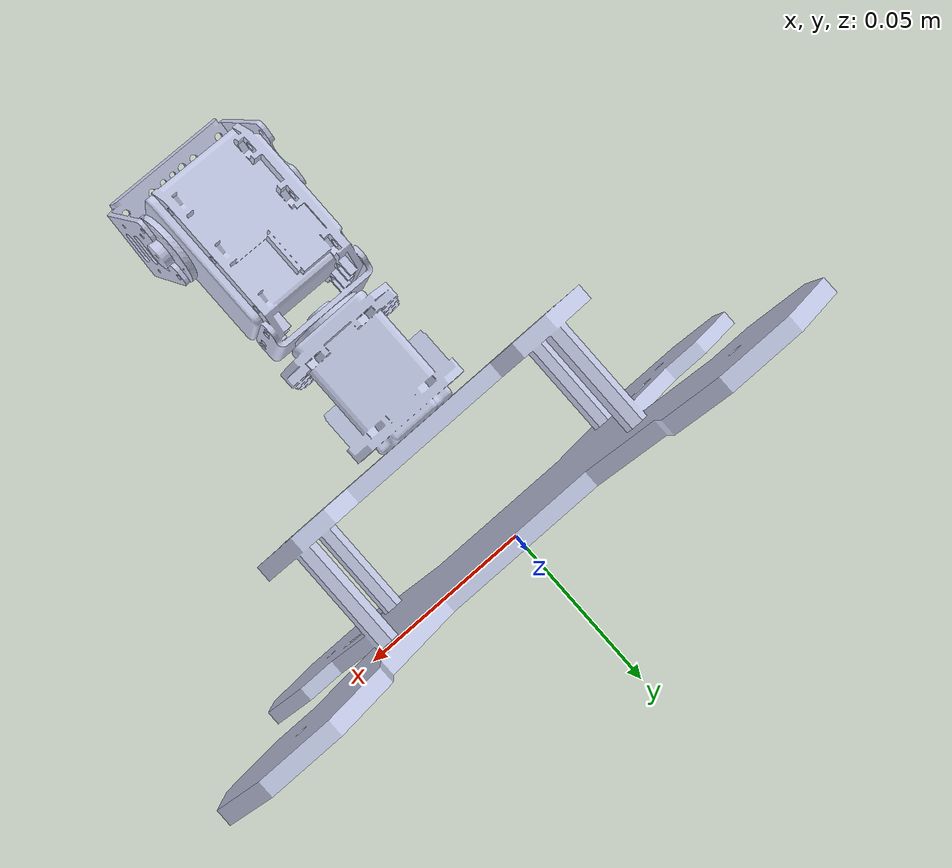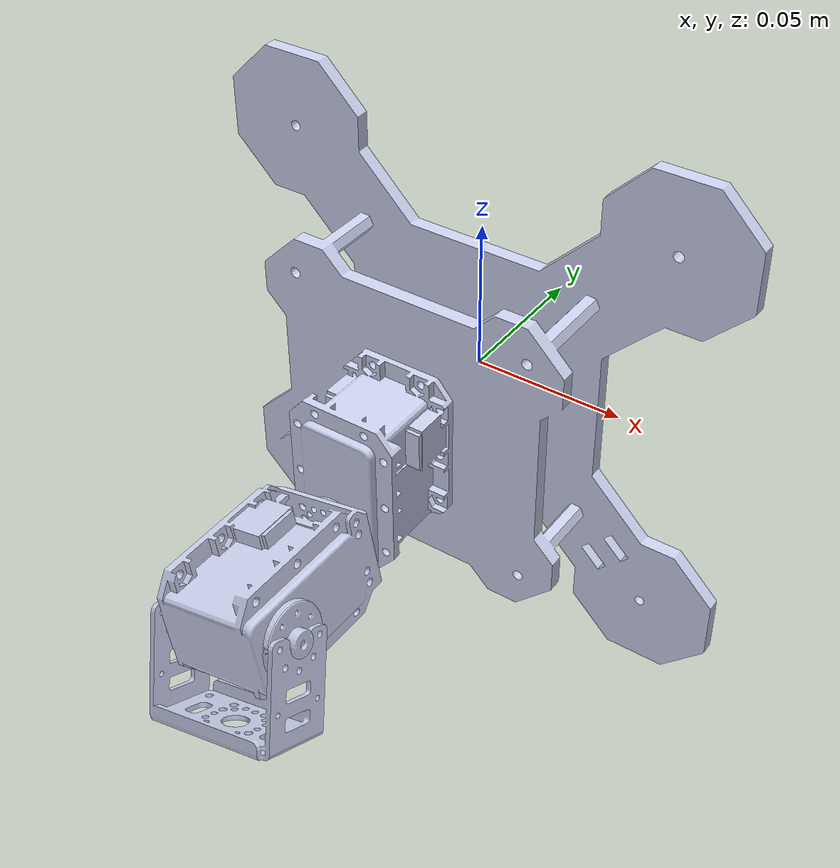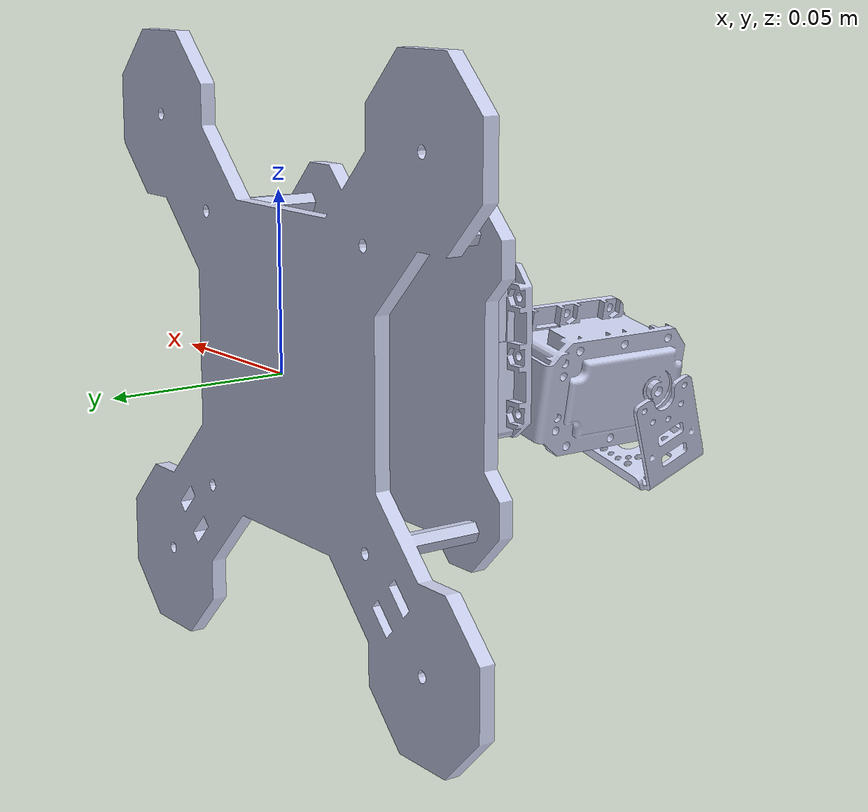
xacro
<?xml version="1.0" ?>
<robot  name="yuntai" xmlns:xacro="http://ros.org/wiki/xacro">
  <link name="plate_link">
    <inertial>
      <origin xyz="-2.24592311040574E-17 -0.0141762635511438 0.000273176447447133" rpy="0 0 0" />
      <mass value="0.120955688774525" />
      <inertia
        ixx="0.000258527715151011"
        ixy="-7.38767452535662E-20"
        ixz="4.48831763968397E-20"
        iyy="0.00045283491467706"
        iyz="-3.94070526460506E-07"
        izz="0.000258536741514214" />
    </inertial>
    <visual>
      <origin  xyz="0 0 0" rpy="0 0 0" />
      <geometry>
        <mesh filename="package://bulldog_description/meshes/plate_link.STL" />
      </geometry>
      <material
        name="">
        <color rgba="0.792156862745098 0.819607843137255 0.933333333333333 1" />
      </material>
    </visual>
    <collision>
      <origin xyz="0 0 0" rpy="0 0 0" />
      <geometry>
        <mesh filename="package://bulldog_description/meshes/plate_link.STL" />
      </geometry>
    </collision>
  </link>
  <link name="servo1_link">
    <inertial>
      <origin xyz="1.01055349547203E-06 -0.0115134503385961 -3.23566095202441E-05" rpy="0 0 0" />
      <mass value="0.0432653395302604" />
      <inertia
        ixx="1.21934605377184E-05"
        ixy="-7.09153810720321E-10"
        ixz="-5.39912755439103E-10"
        iyy="7.4884566382129E-06"
        iyz="-1.82417926778418E-07"
        izz="1.03328178785861E-05" />
    </inertial>
    <visual>
      <origin xyz="0 0 0" rpy="0 0 0" />
      <geometry>
        <mesh filename="package://bulldog_description/meshes/servo1_link.STL" />
      </geometry>
      <material
        name="">
        <color rgba="0.792156862745098 0.819607843137255 0.933333333333333 1" />
      </material>
    </visual>
    <collision>
      <origin
        xyz="0 0 0"
        rpy="0 0 0" />
      <geometry>
        <mesh filename="package://bulldog_description/meshes/servo1_link.STL" />
      </geometry>
    </collision>
  </link>
  <joint name="servo1_joint" type="fixed">
    <origin xyz="0 -0.05675 -0.0133" rpy="-1.5708 1.2246E-16 -3.1416" />
    <parent link="plate_link" />
    <child link="servo1_link" />
    <axis xyz="0 0 0" />
  </joint>
  <link name="disk1_link">
    <inertial>
      <origin xyz="4.05487193606184E-08 0.00225749355928646 -6.63464601990266E-08" rpy="0 0 0" />
      <mass value="0.000787028624060867" />
      <inertia
        ixx="2.31518284348894E-08"
        ixy="5.34094331205932E-14"
        ixz="1.07416097004525E-13"
        iyy="4.4522029534641E-08"
        iyz="1.33780673168824E-13"
        izz="2.31513791752799E-08" />
    </inertial>
    <visual>
      <origin xyz="0 0 0" rpy="0 0 0" />
      <geometry>
        <mesh filename="package://bulldog_description/meshes/disk1_link.STL" />
      </geometry>
      <material name="">
        <color rgba="0.792156862745098 0.819607843137255 0.933333333333333 1" />
      </material>
    </visual>
    <collision>
      <origin xyz="0 0 0" rpy="0 0 0" />
      <geometry>
        <mesh filename="package://bulldog_description/meshes/disk1_link.STL" />
      </geometry>
    </collision>
  </link>
  <joint name="yuntai_shoulder_elbow_joint" type="revolute">
    <origin xyz="0 0 0.017745" rpy="1.5708 -2.5995E-18 -1.1652" />
    <parent link="servo1_link" />
    <child link="disk1_link" />
    <axis xyz="0 1 0" />
    <limit lower="-1.57" upper="1.57"  effort="150"  velocity="3.15" />
  </joint>

  <link name="servo2_link">
    <inertial>
      <origin xyz="-1.62147985772049E-05 0.0293800171852581 3.12984866827497E-05" rpy="0 0 0" />
      <mass value="0.0447244943070203" />
      <inertia
        ixx="1.35314149244498E-05"
        ixy="-1.54714074371834E-08"
        ixz="-5.61360254757384E-10"
        iyy="7.78530951080833E-06"
        iyz="1.81132989598867E-07"
        izz="1.1533019653806E-05" />
    </inertial>
    <visual>
      <origin xyz="0 0 0" rpy="0 0 0" />
      <geometry>
        <mesh filename="package://bulldog_description/meshes/servo2_link.STL" />
      </geometry>
      <material
        name="">
        <color rgba="0.792156862745098 0.819607843137255 0.933333333333333 1" />
      </material>
    </visual>
    <collision>
      <origin xyz="0 0 0" rpy="0 0 0" />
      <geometry>
        <mesh filename="package://bulldog_description/meshes/servo2_link.STL" />
      </geometry>
    </collision>
  </link>
  <joint name="servo2_joint" type="fixed">
    <origin xyz="0 0.0029956 0" rpy="3.1416 0.216 3.1416" />
    <parent link="disk1_link" />
    <child link="servo2_link" />
    <axis xyz="0 1 0" />
  </joint>
  <link name="disk2_link">
    <inertial>
      <origin xyz="4.0548720561806E-08 0.00225749355928648 -6.63464601313724E-08" rpy="0 0 0" />
      <mass value="0.000787028624060868" />
      <inertia
        ixx="2.31518284348894E-08"
        ixy="5.34094331196308E-14"
        ixz="1.07416097004525E-13"
        iyy="4.4522029534641E-08"
        iyz="1.33780673173258E-13"
        izz="2.31513791752799E-08" />
    </inertial>
    <visual>
      <origin xyz="0 0 0" rpy="0 0 0" />
      <geometry>
        <mesh filename="package://bulldog_description/meshes/disk2_link.STL" />
      </geometry>
      <material name="">
        <color rgba="0.792156862745098 0.819607843137255 0.933333333333333 1" />
      </material>
    </visual>
    <collision>
      <origin xyz="0 0 0" rpy="0 0 0" />
      <geometry>
        <mesh filename="package://bulldog_description/meshes/disk2_link.STL" />
      </geometry>
    </collision>
  </link>
  <joint name="kinect2_joint" type="revolute">
    <origin xyz="0 0.041809 -0.017745" rpy="-1.5708 0 -2.7298" />
    <parent link="servo2_link" />
    <child link="disk2_link" />
    <axis xyz="0 1 0" />
  <limit lower="-3.14" upper="3.14"  effort="150"  velocity="3.15" />
  </joint>
  <link name="top_link">
    <inertial>
      <origin  xyz="-0.00291764759358233 0.0181622781866235 1.73472347597681E-17" rpy="0 0 0" />
      <mass value="0.0038991020769589" />
      <inertia
        ixx="7.9783070435998E-07"
        ixy="-2.06417165491647E-07"
        ixz="2.7313503826501E-21"
        iyy="1.41429843708263E-06"
        iyz="1.35657620458697E-21"
        izz="1.73947469245394E-06" />
    </inertial>
    <visual>
      <origin xyz="0 0 0" rpy="0 0 0" />
      <geometry>
        <mesh filename="package://bulldog_description/meshes/top_link.STL" />
      </geometry>
      <material name="">
        <color rgba="0.792156862745098 0.819607843137255 0.933333333333333 1" />
      </material>
    </visual>
    <collision>
      <origin xyz="0 0 0" rpy="0 0 0" />
      <geometry>
        <mesh filename="package://bulldog_description/meshes/top_link.STL" />
      </geometry>
    </collision>
  </link>
  <joint name="kinect_joint" type="fixed">
    <origin xyz="-0.00058 -0.017495 0" rpy="3.1415 0 -1.6108" />
    <parent link="disk2_link" />
    <child link="top_link" />
    <axis xyz="1 0 0" />
  </joint>
</robot>
